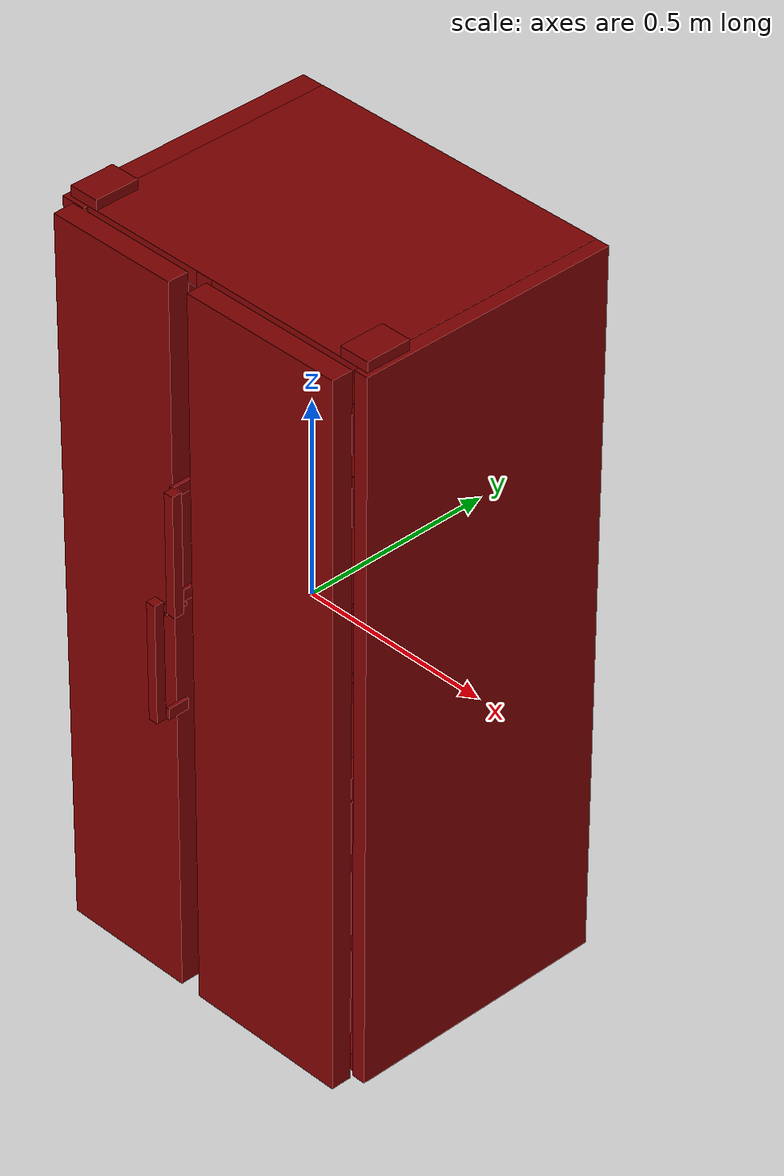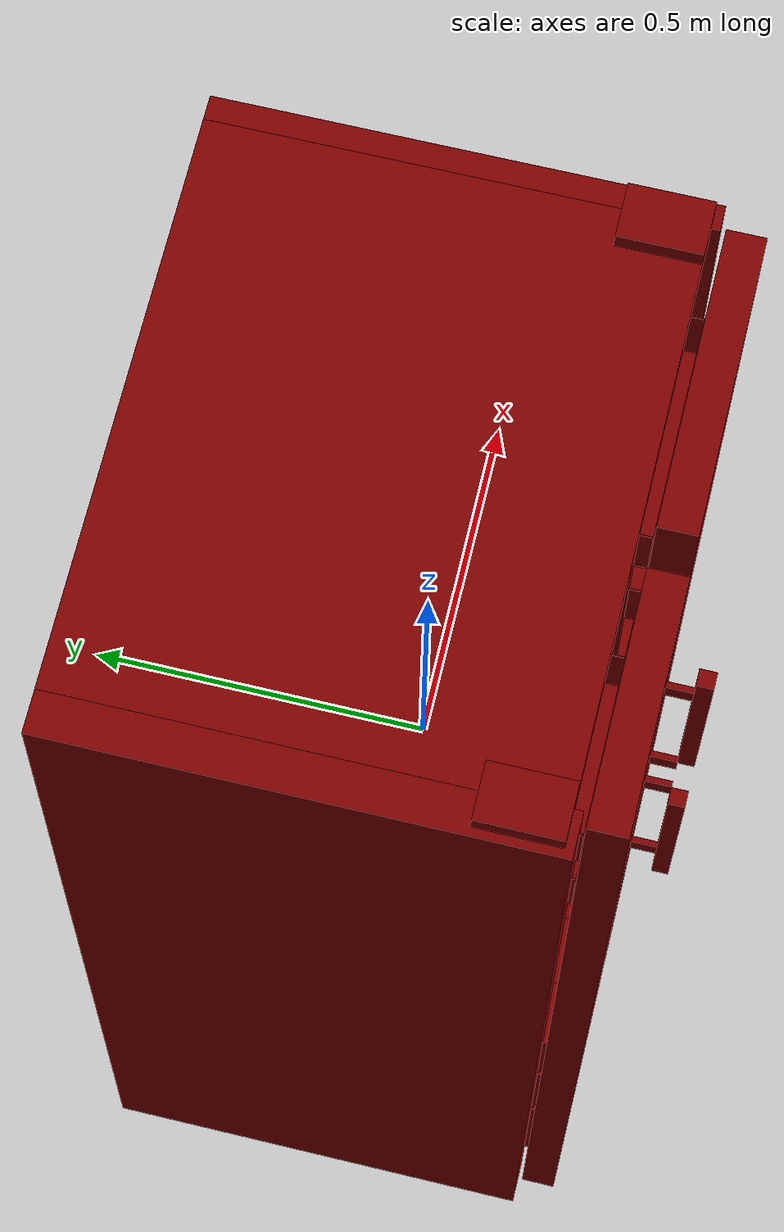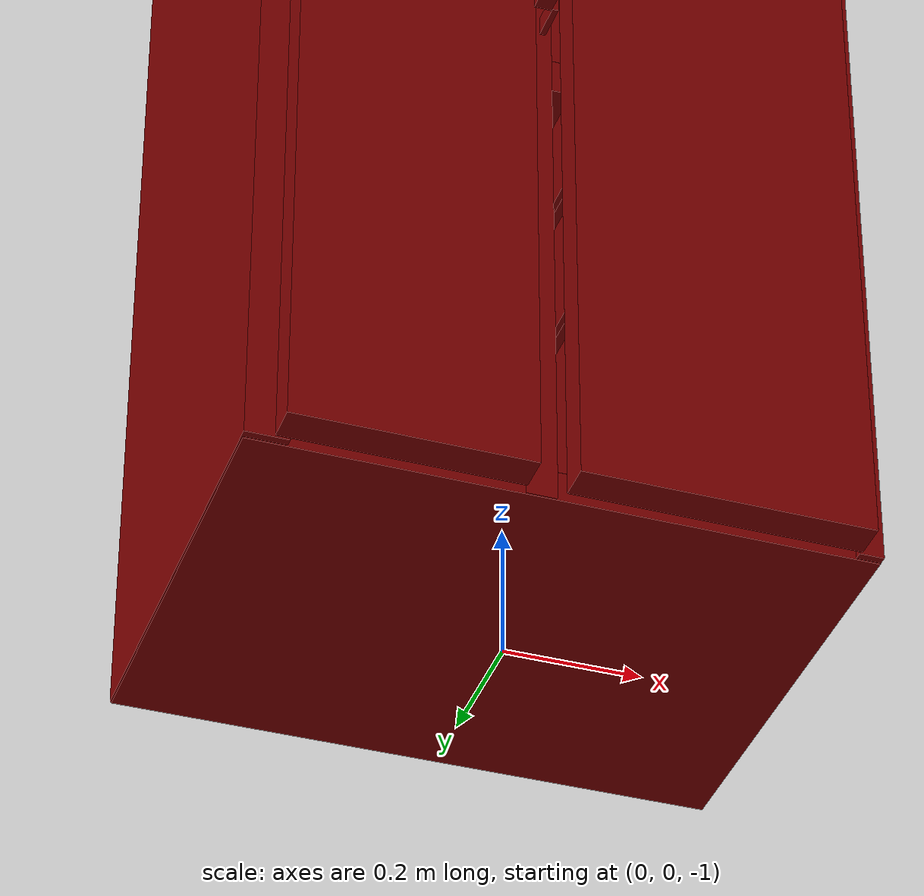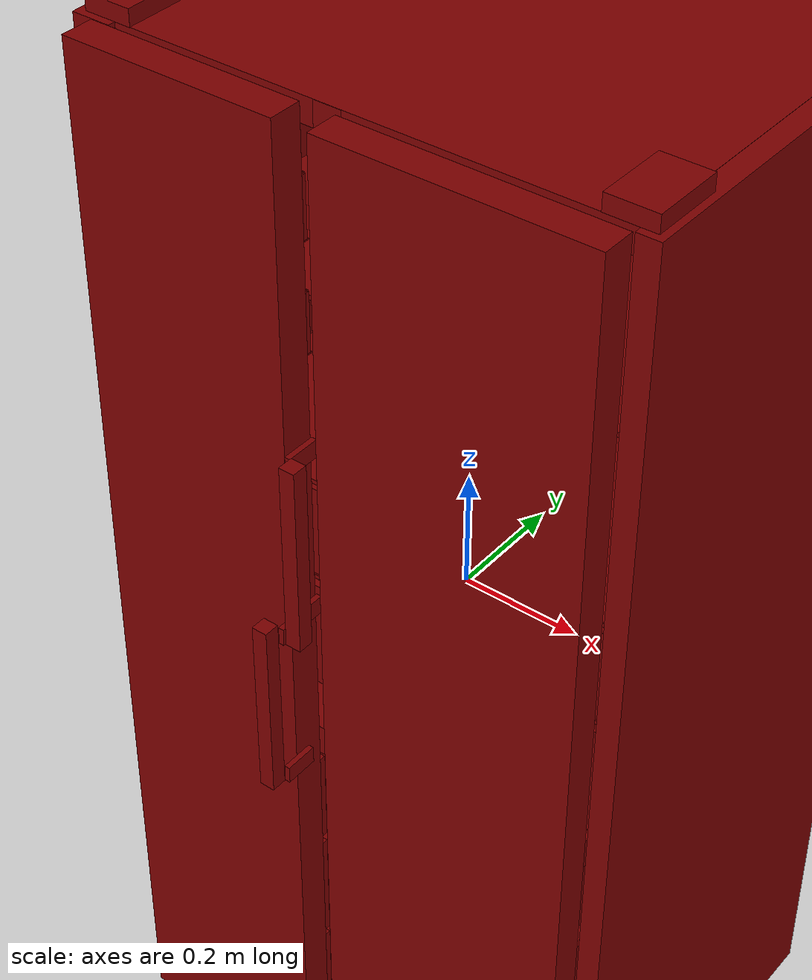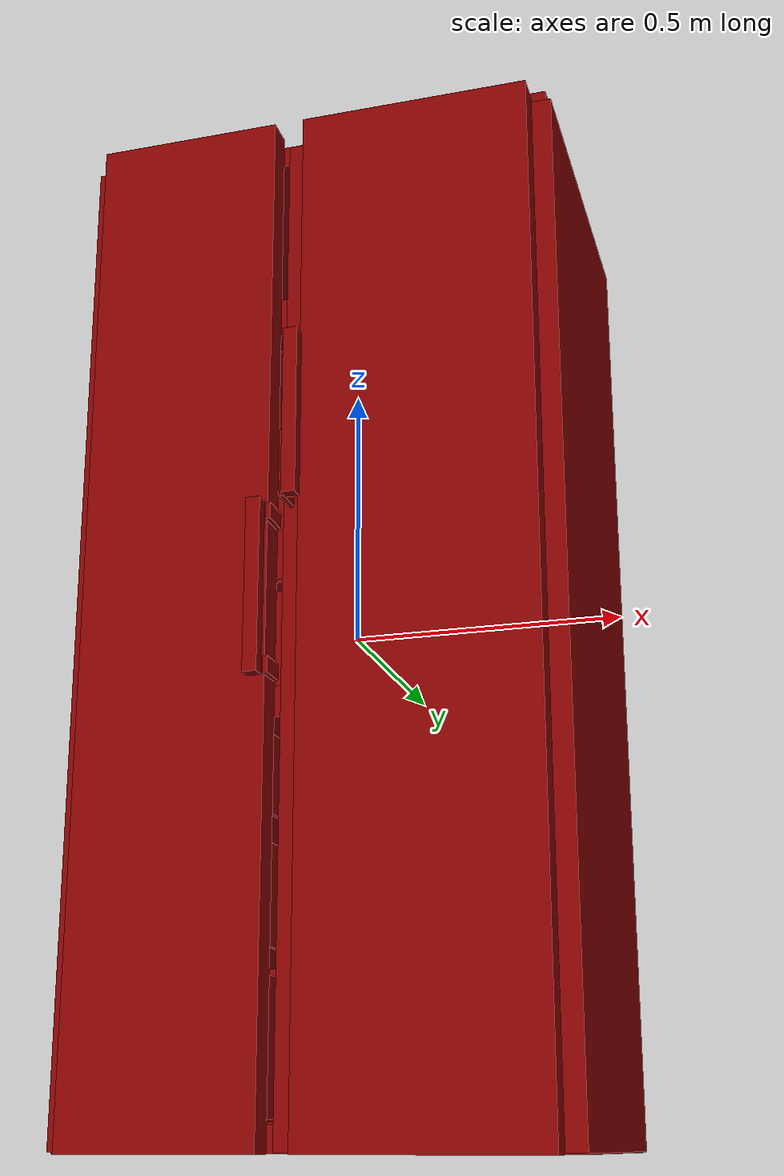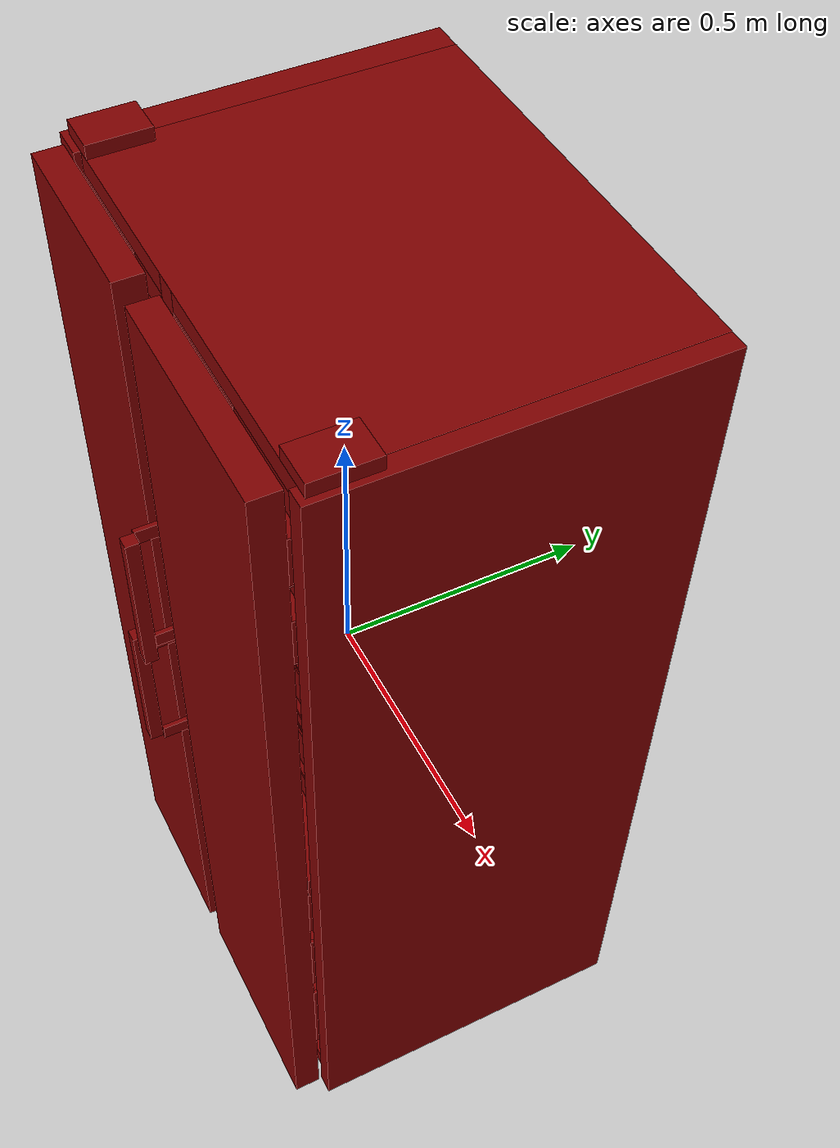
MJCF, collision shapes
<?xml version='1.0' encoding='UTF-8'?>
<mujoco model="model">
  <option timestep="0.002" gravity="0.0 0.0 -9.81"/>
  <compiler angle="radian"/>
  <asset>
    <mesh file="visuals/freezer_door.obj" name="freezer_door_vis"/>
    <mesh file="visuals/freezer_drawer0.obj" name="freezer_drawer0_vis"/>
    <mesh file="visuals/freezer_drawer1.obj" name="freezer_drawer1_vis"/>
    <mesh file="visuals/freezer_drawer2.obj" name="freezer_drawer2_vis"/>
    <mesh file="visuals/freezer_drawer3.obj" name="freezer_drawer3_vis"/>
    <mesh file="visuals/freezer_drawer4.obj" name="freezer_drawer4_vis"/>
    <mesh file="visuals/fridge_door.obj" name="fridge_door_vis"/>
    <mesh file="visuals/fridge_door_Clear.obj" name="fridge_door_Clear_vis"/>
    <mesh file="visuals/fridge_drawer0.obj" name="fridge_drawer0_vis"/>
    <mesh file="visuals/fridge_drawer1.obj" name="fridge_drawer1_vis"/>
    <mesh file="visuals/fridge_drawer2.obj" name="fridge_drawer2_vis"/>
    <mesh file="visuals/fridge_drawer3.obj" name="fridge_drawer3_vis"/>
    <mesh file="visuals/fridge_drawer4.obj" name="fridge_drawer4_vis"/>
    <mesh file="visuals/Body001.obj" name="Body001_vis"/>
    <mesh file="visuals/Body001_Clear.obj" name="Body001_Clear_vis"/>
    <texture file="visuals/T_BC001.png" name="Body001_material" type="2d"/>
    <material name="Body001_material" rgba="1 1 1 1.0" texture="Body001_material" shininess="0.2512328028678894" specular="2"/>
    <texture file="visuals/T_BC001.png" name="freezer_door_material" type="2d"/>
    <material name="freezer_door_material" rgba="1 1 1 1.0" texture="freezer_door_material" shininess="0.2512328028678894" specular="2"/>
    <texture file="visuals/T_BC001.png" name="freezer_drawer0_material" type="2d"/>
    <material name="freezer_drawer0_material" rgba="1 1 1 1.0" texture="freezer_drawer0_material" shininess="0.2512328028678894" specular="0.3103448502657381"/>
    <texture file="visuals/T_BC001.png" name="freezer_drawer1_material" type="2d"/>
    <material name="freezer_drawer1_material" rgba="1 1 1 1.0" texture="freezer_drawer1_material" shininess="0.2512328028678894" specular="0.3103448502657381"/>
    <texture file="visuals/T_BC001.png" name="freezer_drawer2_material" type="2d"/>
    <material name="freezer_drawer2_material" rgba="1 1 1 1.0" texture="freezer_drawer2_material" shininess="0.2512328028678894" specular="0.3103448502657381"/>
    <texture file="visuals/T_BC001.png" name="freezer_drawer3_material" type="2d"/>
    <material name="freezer_drawer3_material" rgba="1 1 1 1.0" texture="freezer_drawer3_material" shininess="0.2512328028678894" specular="0.3103448502657381"/>
    <texture file="visuals/T_BC001.png" name="freezer_drawer4_material" type="2d"/>
    <material name="freezer_drawer4_material" rgba="1 1 1 1.0" texture="freezer_drawer4_material" shininess="0.2512328028678894" specular="0.3103448502657381"/>
    <texture file="visuals/T_BC001.png" name="fridge_door_material" type="2d"/>
    <material name="fridge_door_material" rgba="1 1 1 1.0" texture="fridge_door_material" shininess="0.2512328028678894" specular="2"/>
    <texture file="visuals/T_BC001.png" name="fridge_door_Clear_material" type="2d"/>
    <material name="fridge_door_Clear_material" rgba="1 1 1 0.307692289352417" texture="fridge_door_Clear_material" shininess="0.2512328028678894" specular="0.3"/>
    <texture file="visuals/T_BC001.png" name="fridge_drawer0_material" type="2d"/>
    <material name="fridge_drawer0_material" rgba="1 1 1 1.0" texture="fridge_drawer0_material" shininess="0.2512328028678894" specular="0.3103448502657381"/>
    <texture file="visuals/T_BC001.png" name="fridge_drawer1_material" type="2d"/>
    <material name="fridge_drawer1_material" rgba="1 1 1 1.0" texture="fridge_drawer1_material" shininess="0.2512328028678894" specular="0.3103448502657381"/>
    <texture file="visuals/T_BC001.png" name="fridge_drawer2_material" type="2d"/>
    <material name="fridge_drawer2_material" rgba="1 1 1 1.0" texture="fridge_drawer2_material" shininess="0.2512328028678894" specular="0.3103448502657381"/>
    <texture file="visuals/T_BC001.png" name="fridge_drawer3_material" type="2d"/>
    <material name="fridge_drawer3_material" rgba="1 1 1 0.307692289352417" texture="fridge_drawer3_material" shininess="0.2512328028678894" specular="0.3103448502657381"/>
    <texture file="visuals/T_BC001.png" name="fridge_drawer4_material" type="2d"/>
    <material name="fridge_drawer4_material" rgba="1 1 1 0.307692289352417" texture="fridge_drawer4_material" shininess="0.2512328028678894" specular="0.3103448502657381"/>
    <texture file="visuals/T_BC001.png" name="Body001_Clear_material" type="2d"/>
    <material name="Body001_Clear_material" rgba="1 1 1 0.307692289352417" texture="Body001_Clear_material" shininess="0.2512328028678894" specular="0.3103448502657381"/>
  </asset>
  <default>
    <default class="visual">
      <geom conaffinity="0" contype="0" group="1" type="mesh"/>
    </default>
    <default class="collision">
      <geom group="0" rgba="0.5 0 0 0.5"/>
    </default>
    <default class="spawn">
      <geom group="0" rgba="1 1 1 0.5" contype="0" conaffinity="0"/>
      <site group="0" rgba="1 1 1 0.5"/>
    </default>
    <default class="region">
      <geom group="1" conaffinity="0" contype="0" rgba="0 1 0 0"/>
    </default>
  </default>
  <worldbody>
    <body>
      <body name="object">
        <geom mesh="Body001_vis" type="mesh" solimp="0.998 0.998 0.001" solref="0.001 1" friction="0.95 0.3 0.1" class="visual" material="Body001_material"/>
        <geom class="collision" type="box" pos="-0.2191927284002304 0.010217373259365559 0.5617574453353882" size="0.1556900590658188 0.20182056725025177 0.0037484492640942335" quat="1.0 0.0 0.0 0.0"/>
        <geom class="collision" type="box" pos="0.18059471249580383 0.010217373259365559 0.5624393224716187" size="0.18992839753627777 0.2018209546804428 0.0037484553176909685" quat="1.0 0.0 0.0 0.0"/>
        <geom class="collision" type="box" pos="-0.2191927284002304 0.010217373259365559 0.24459096789360046" size="0.15569062530994415 0.2018217146396637 0.003748467192053795" quat="1.0 0.0 0.0 0.0"/>
        <geom class="collision" type="box" pos="0.18059471249580383 0.010217373259365559 0.24527278542518616" size="0.1899295449256897 0.20182208716869354 0.003748473012819886" quat="1.0 0.0 0.0 0.0"/>
        <geom class="collision" type="box" pos="-0.2191927284002304 0.010217373259365559 0.06405968219041824" size="0.1556910127401352 0.20182247459888458 0.003748479066416621" quat="1.0 0.0 0.0 0.0"/>
        <geom class="collision" type="box" pos="0.18059471249580383 0.010217373259365559 0.06474149972200394" size="0.18993030488491058 0.20182284712791443 0.0037484848871827126" quat="1.0 0.0 0.0 0.0"/>
        <geom class="collision" type="box" pos="-0.41790592670440674 0.06337001919746399 -0.005060311406850815" size="0.031578924506902695 0.33859574794769287 0.9221314787864685" quat="1.0 0.0 0.0 0.0"/>
        <geom class="collision" type="box" pos="0.431427538394928 0.06337001919746399 -0.005060311406850815" size="0.018075084313750267 0.33859628438949585 0.9221325516700745" quat="1.0 0.0 0.0 0.0"/>
        <geom class="collision" type="box" pos="-0.03617604076862335 0.06932438910007477 -0.005060311406850815" size="0.022395625710487366 0.33264604210853577 0.9221408367156982" quat="1.0 0.0 0.0 0.0"/>
        <geom class="collision" type="box" pos="-0.0018581436015665531 0.06932438910007477 -0.1829259693622589" size="0.37307634949684143 0.33264291286468506 0.027705665677785873" quat="1.0 0.0 0.0 0.0"/>
        <geom class="collision" type="box" pos="0.01171052735298872 0.06932438910007477 0.897463321685791" size="0.40257006883621216 0.33264341950416565 0.020109234377741814" quat="1.0 0.0 0.0 0.0"/>
        <geom class="collision" type="box" pos="0.01312475185841322 0.31269246339797974 -0.005961664021015167" size="0.40551963448524475 0.08925551176071167 0.9226935505867004" quat="1.0 0.0 0.0 0.0"/>
        <geom class="collision" type="box" pos="0.0007350275991484523 0.06932441890239716 -0.9064415693283081" size="0.4479449689388275 0.33264443278312683 0.02277178317308426" quat="1.0 0.0 0.0 0.0"/>
        <geom class="collision" type="box" pos="-0.39877980947494507 -0.2059071958065033 0.9301031827926636" size="0.03880282863974571 0.05741431564092636 0.013140163384377956" quat="1.0 0.0 0.0 0.0"/>
        <geom class="collision" type="box" pos="0.3993501663208008 -0.2059071958065033 0.9301031827926636" size="0.038802895694971085 0.057414378970861435 0.013140179216861725" quat="1.0 0.0 0.0 0.0"/>
        <body name="freezer_door">
          <joint axis="0.0 0.0 -1.0" pos="-0.41782206296920776 -0.3080289363861084 -0.03210470825433731" limited="true" name="freezer_door_joint" range="0.0 1.5707963267948966" type="hinge" damping="1" frictionloss="1" armature=".01" stiffness="0.05"/>
          <geom mesh="freezer_door_vis" type="mesh" solimp="0.998 0.998 0.001" solref="0.001 1" friction="0.95 0.3 0.1" class="visual" material="freezer_door_material"/>
          <geom class="collision" type="box" pos="-0.24363894760608673 -0.27963539958000183 0.7153990268707275" size="0.12302876263856888 0.0009392445208504796 0.049916304647922516" quat="1.0 0.0 0.0 0.0"/>
          <geom class="collision" type="box" pos="-0.36429333686828613 -0.2427847981452942 0.71550452709198" size="0.0009392534266225994 0.03547966107726097 0.04981076717376709" quat="1.0 0.0 0.0 0.0"/>
          <geom class="collision" type="box" pos="-0.24434687197208405 -0.2059074193239212 0.71550452709198" size="0.11887757480144501 0.0009392508072778583 0.04981076717376709" quat="1.0 0.0 0.0 0.0"/>
          <geom class="collision" type="box" pos="-0.12249672412872314 -0.2427847981452942 0.71550452709198" size="0.0009392534266225994 0.03547966107726097 0.04981076717376709" quat="1.0 0.0 0.0 0.0"/>
          <geom class="collision" type="box" pos="-0.24292141199111938 -0.2426450401544571 0.6662249565124512" size="0.12231118977069855 0.0376768633723259 0.0009392482461407781" quat="1.0 0.0 0.0 0.0"/>
          <geom class="collision" type="box" pos="-0.24363894760608673 -0.27963539958000183 0.5351688861846924" size="0.12302876263856888 0.0009392445208504796 0.049916304647922516" quat="1.0 0.0 0.0 0.0"/>
          <geom class="collision" type="box" pos="-0.36333930492401123 -0.2427847981452942 0.5352743864059448" size="0.0009392534266225994 0.03547966107726097 0.04981076717376709" quat="1.0 0.0 0.0 0.0"/>
          <geom class="collision" type="box" pos="-0.24434687197208405 -0.2059074193239212 0.5352743864059448" size="0.11887757480144501 0.0009392508072778583 0.04981076717376709" quat="1.0 0.0 0.0 0.0"/>
          <geom class="collision" type="box" pos="-0.12249672412872314 -0.2427847981452942 0.5352743864059448" size="0.0009392534266225994 0.03547966107726097 0.04981076717376709" quat="1.0 0.0 0.0 0.0"/>
          <geom class="collision" type="box" pos="-0.24292141199111938 -0.2426450401544571 0.48599478602409363" size="0.12231118977069855 0.0376768633723259 0.0009392482461407781" quat="1.0 0.0 0.0 0.0"/>
          <geom class="collision" type="box" pos="-0.23585760593414307 -0.30889829993247986 -0.004155382513999939" size="0.17306047677993774 0.02668202668428421 0.9254235625267029" quat="1.0 0.0 0.0 0.0" name="freezer_door_main"/>
          <geom class="collision" type="box" pos="-0.0661163181066513 -0.3872798681259155 -0.010976136662065983" size="0.012665143236517906 0.012665143236517906 0.1547602117061615" quat="1.0 0.0 0.0 0.0" name="freezer_door_handle_main"/>
          <geom class="collision" type="box" pos="-0.047427255660295486 -0.3475547432899475 0.12634950876235962" size="0.004406571388244629 0.027533311396837234 0.014519368298351765" quat="1.0 0.0 0.0 0.0" name="freezer_door_handle_1"/>
          <geom class="collision" type="box" pos="-0.047427255660295486 -0.3475547432899475 -0.1482355147600174" size="0.004406571388244629 0.027533311396837234 0.014519368298351765" quat="1.0 0.0 0.0 0.0" name="freezer_door_handle_2"/>
        </body>
        <body name="freezer_drawer0">
          <geom class="region" name="reg_freezer_drawer0" type="box" pos="-0.21510645374655724 -0.08969205617904663 -0.756875216960907" size="0.12948565354943276 0.16410197114944458 0.10469020700454712"/>
          <joint axis="0.0 -1.0 0.0" pos="-0.21463386714458466 -0.09317250549793243 -0.755940854549408" limited="true" name="freezer_drawer0_joint" range="0.0 0.3" type="slide" damping="1" frictionloss="1" armature=".01" stiffness="0.05"/>
          <geom mesh="freezer_drawer0_vis" type="mesh" solimp="0.998 0.998 0.001" solref="0.001 1" friction="0.95 0.3 0.1" class="visual" material="freezer_drawer0_material"/>
          <geom class="collision" type="box" pos="-0.2161329835653305 0.09207402169704437 -0.76121985912323" size="0.13995569944381714 0.002930230228230357 0.11425691097974777" quat="1.0 0.0 0.0 0.0"/>
          <geom class="collision" type="box" pos="-0.35560137033462524 -0.09073059260845184 -0.7612197399139404" size="0.0032004944514483213 0.17880018055438995 0.11425664275884628" quat="1.0 0.0 0.0 0.0"/>
          <geom class="collision" type="box" pos="-0.07550551742315292 -0.09073059260845184 -0.7612197399139404" size="0.003200484672561288 0.17879992723464966 0.11425638198852539" quat="1.0 0.0 0.0 0.0"/>
          <geom class="collision" type="box" pos="-0.21436797082424164 -0.09018582850694656 -0.8722476959228516" size="0.13995490968227386 0.17934447526931763 0.0032002616208046675" quat="1.0 0.0 0.0 0.0"/>
          <geom class="collision" type="box" pos="-0.1191008985042572 -0.27172622084617615 -0.7538173198699951" size="0.04738727584481239 0.010428176261484623 0.12842223048210144" quat="1.0 0.0 0.0 0.0"/>
          <geom class="collision" type="box" pos="-0.21803468465805054 -0.27172622084617615 -0.6825311183929443" size="0.05154647305607796 0.010428176261484623 0.057136084884405136" quat="1.0 0.0 0.0 0.0"/>
          <geom class="collision" type="box" pos="-0.21803468465805054 -0.27172622084617615 -0.8352788686752319" size="0.05154647305607796 0.010428176261484623 0.04674777016043663" quat="1.0 0.0 0.0 0.0"/>
          <geom class="collision" type="box" pos="-0.31681889295578003 -0.27172622084617615 -0.7538173198699951" size="0.04723773151636124 0.010428176261484623 0.12842223048210144" quat="1.0 0.0 0.0 0.0"/>
          <geom class="collision" type="box" pos="-0.21803466975688934 -0.27158689498901367 -0.761932373046875" size="0.05154647305607796 0.00229278695769608 0.023585116490721703" quat="0.9871617555618286 -0.15972357988357544 0.0 0.0"/>
          <geom class="collision" type="box" pos="-0.21803466975688934 -0.2637040615081787 -0.7632468938827515" size="0.05154647305607796 0.00229278695769608 0.023585110902786255" quat="1.0 0.0 0.0 0.0"/>
        </body>
        <body name="freezer_drawer1">
          <geom class="region" name="reg_freezer_drawer1" type="box" pos="-0.21566808596253395 -0.08969205617904663 -0.5092398226261139" size="0.12892402133345604 0.16410197114944458 0.07717315649986267"/>
          <joint axis="0.0 -1.0 0.0" pos="-0.2168489545583725 -0.09317241609096527 -0.5081155300140381" limited="true" name="freezer_drawer1_joint" range="0.0 0.3" type="slide" damping="1" frictionloss="1" armature=".01" stiffness="0.05"/>
          <geom mesh="freezer_drawer1_vis" type="mesh" solimp="0.998 0.998 0.001" solref="0.001 1" friction="0.95 0.3 0.1" class="visual" material="freezer_drawer1_material"/>
          <geom class="collision" type="box" pos="-0.2161329835653305 0.09207402169704437 -0.5133911371231079" size="0.13995830714702606 0.002930271439254284 0.08683168888092041" quat="1.0 0.0 0.0 0.0"/>
          <geom class="collision" type="box" pos="-0.35487091541290283 -0.09073059260845184 -0.5133911371231079" size="0.003931030631065369 0.17880281805992126 0.08683156222105026" quat="1.0 0.0 0.0 0.0"/>
          <geom class="collision" type="box" pos="-0.07550551742315292 -0.09073059260845184 -0.5133911371231079" size="0.003200565930455923 0.17880256474018097 0.08683142811059952" quat="1.0 0.0 0.0 0.0"/>
          <geom class="collision" type="box" pos="-0.21436797082424164 -0.09018582105636597 -0.597000241279602" size="0.1399575024843216 0.17934711277484894 0.003200301667675376" quat="1.0 0.0 0.0 0.0"/>
          <geom class="collision" type="box" pos="-0.21803466975688934 -0.27158689498901367 -0.5157673358917236" size="0.05154647305607796 0.00229278695769608 0.023585118353366852" quat="0.9871617555618286 -0.15972357988357544 0.0 0.0"/>
          <geom class="collision" type="box" pos="-0.31681889295578003 -0.27172622084617615 -0.5084799528121948" size="0.04723773151636124 0.010428176261484623 0.10329610109329224" quat="1.0 0.0 0.0 0.0"/>
          <geom class="collision" type="box" pos="-0.21803468465805054 -0.27172622084617615 -0.5770264863967896" size="0.05154647305607796 0.010428176261484623 0.03453674539923668" quat="1.0 0.0 0.0 0.0"/>
          <geom class="collision" type="box" pos="-0.21803468465805054 -0.27172622084617615 -0.44940483570098877" size="0.05154647305607796 0.010428176261484623 0.04422098398208618" quat="1.0 0.0 0.0 0.0"/>
          <geom class="collision" type="box" pos="-0.1191008985042572 -0.27172622084617615 -0.5084799528121948" size="0.04738727584481239 0.010428176261484623 0.10329610109329224" quat="1.0 0.0 0.0 0.0"/>
          <geom class="collision" type="box" pos="-0.21803466975688934 -0.263041615486145 -0.5170818567276001" size="0.05154647305607796 0.00229278695769608 0.023585114628076553" quat="1.0 0.0 0.0 0.0"/>
        </body>
        <body name="freezer_drawer2">
          <geom class="region" name="reg_freezer_drawer2" type="box" pos="-0.21553296223282814 -0.08969207108020782 -0.3038061335682869" size="0.12905914506316185 0.16410198605060577 0.0590873116850853"/>
          <joint axis="0.0 -1.0 0.0" pos="-0.2168489545583725 -0.09317243099212646 -0.302822083234787" limited="true" name="freezer_drawer2_joint" range="0.0 0.3" type="slide" damping="1" frictionloss="1" armature=".01" stiffness="0.05"/>
          <geom mesh="freezer_drawer2_vis" type="mesh" solimp="0.998 0.998 0.001" solref="0.001 1" friction="0.95 0.3 0.1" class="visual" material="freezer_drawer2_material"/>
          <geom class="collision" type="box" pos="-0.2161329835653305 0.09207402169704437 -0.30812978744506836" size="0.1399608999490738 0.002930312417447567 0.06911139190196991" quat="1.0 0.0 0.0 0.0"/>
          <geom class="collision" type="box" pos="-0.35487091541290283 -0.09073059260845184 -0.30812978744506836" size="0.0039311121217906475 0.17880545556545258 0.06911125034093857" quat="1.0 0.0 0.0 0.0"/>
          <geom class="collision" type="box" pos="-0.07550551742315292 -0.09073059260845184 -0.30812978744506836" size="0.003200647421181202 0.1788051873445511 0.06911111623048782" quat="1.0 0.0 0.0 0.0"/>
          <geom class="collision" type="box" pos="-0.21436797082424164 -0.09018582105636597 -0.37401723861694336" size="0.13996011018753052 0.17934973537921906 0.0032003428786993027" quat="1.0 0.0 0.0 0.0"/>
          <geom class="collision" type="box" pos="-0.1191008985042572 -0.27172622084617615 -0.3025060296058655" size="0.04738727584481239 0.010428176261484623 0.08557447046041489" quat="1.0 0.0 0.0 0.0"/>
          <geom class="collision" type="box" pos="-0.21803468465805054 -0.27172622084617615 -0.24343091249465942" size="0.05154647305607796 0.010428176261484623 0.02649935893714428" quat="1.0 0.0 0.0 0.0"/>
          <geom class="collision" type="box" pos="-0.21803468465805054 -0.27172622084617615 -0.3533308804035187" size="0.05154647305607796 0.010428176261484623 0.03453674539923668" quat="1.0 0.0 0.0 0.0"/>
          <geom class="collision" type="box" pos="-0.31681889295578003 -0.27172622084617615 -0.3025060296058655" size="0.04723773151636124 0.010428176261484623 0.08557447046041489" quat="1.0 0.0 0.0 0.0"/>
          <geom class="collision" type="box" pos="-0.21803466975688934 -0.27158689498901367 -0.29207172989845276" size="0.05154647305607796 0.00229278695769608 0.023585118353366852" quat="0.9871617555618286 -0.15972357988357544 0.0 0.0"/>
          <geom class="collision" type="box" pos="-0.21803466975688934 -0.2637682557106018 -0.2933862507343292" size="0.05154647305607796 0.00229278695769608 0.023585114628076553" quat="1.0 0.0 0.0 0.0"/>
        </body>
        <body name="freezer_drawer3">
          <geom class="region" name="reg_freezer_drawer3" type="box" pos="-0.2166927121579647 0.008516713976860046 -0.04799192026257515" size="0.12296460738778114 0.17011475360393524 0.08303832432627678"/>
          <joint axis="0.0 -1.0 0.0" pos="-0.21567994356155396 0.004537040367722511 -0.054262690246105194" limited="true" name="freezer_drawer3_joint" range="0.0 0.3" type="slide" damping="1" frictionloss="1" armature=".01" stiffness="0.05"/>
          <geom mesh="freezer_drawer3_vis" type="mesh" solimp="0.998 0.998 0.001" solref="0.001 1" friction="0.95 0.3 0.1" class="visual" material="freezer_drawer3_material"/>
          <geom class="collision" type="box" pos="-0.21862977743148804 -0.1799316257238388 -0.06786449253559113" size="0.045026764273643494 0.00229278695769608 0.023585118353366852" quat="0.9871617555618286 -0.15972357988357544 0.0 0.0"/>
          <geom class="collision" type="box" pos="-0.21862977743148804 -0.1802385151386261 -0.12235140800476074" size="0.045026764273643494 0.010428176261484623 0.03019585832953453" quat="1.0 0.0 0.0 0.0"/>
          <geom class="collision" type="box" pos="-0.21862977743148804 -0.1802385151386261 -0.0004300996661186218" size="0.045026764273643494 0.010428176261484623 0.044821977615356445" quat="1.0 0.0 0.0 0.0"/>
          <geom class="collision" type="box" pos="-0.12151338160037994 -0.1802385151386261 -0.05418413132429123" size="0.052089616656303406 0.010428176261484623 0.09857600182294846" quat="1.0 0.0 0.0 0.0"/>
          <geom class="collision" type="box" pos="-0.21724015474319458 0.005912944674491882 -0.14009559154510498" size="0.13513877987861633 0.18467281758785248 0.0032004036474972963" quat="1.0 0.0 0.0 0.0"/>
          <geom class="collision" type="box" pos="-0.08431266248226166 0.0059129465371370316 -0.051873356103897095" size="0.0032007682602852583 0.18467307090759277 0.09167297184467316" quat="1.0 0.0 0.0 0.0"/>
          <geom class="collision" type="box" pos="-0.3484846353530884 0.0059129465371370316 -0.051873356103897095" size="0.003200778504833579 0.18467332422733307 0.09167309105396271" quat="1.0 0.0 0.0 0.0"/>
          <geom class="collision" type="box" pos="-0.2172401249408722 0.1954663246870041 -0.051873356103897095" size="0.1351395696401596 0.003604248631745577 0.09167320281267166" quat="1.0 0.0 0.0 0.0"/>
          <geom class="collision" type="box" pos="-0.21862977743148804 -0.1714940369129181 -0.06857043504714966" size="0.045026764273643494 0.0017136718379333615 0.024223007261753082" quat="1.0 0.0 0.0 0.0"/>
          <geom class="collision" type="box" pos="-0.31317341327667236 -0.1802385151386261 -0.05418413132429123" size="0.049516864120960236 0.010428176261484623 0.09857600182294846" quat="1.0 0.0 0.0 0.0"/>
        </body>
        <body name="freezer_drawer4">
          <geom class="region" name="reg_freezer_drawer4" type="box" pos="-0.214550893753767 0.008516713976860046 0.15281056612730026" size="0.12510642579197884 0.17011475360393524 0.06054491347074509"/>
          <joint axis="0.0 -1.0 0.0" pos="-0.21343432366847992 0.0036053620278835297 0.14956721663475037" limited="true" name="freezer_drawer4_joint" range="0.0 0.3" type="slide" damping="1" frictionloss="1" armature=".01" stiffness="0.05"/>
          <geom mesh="freezer_drawer4_vis" type="mesh" solimp="0.998 0.998 0.001" solref="0.001 1" friction="0.95 0.3 0.1" class="visual" material="freezer_drawer4_material"/>
          <geom class="collision" type="box" pos="-0.2183666080236435 -0.1799316257238388 0.12373460829257965" size="0.045026764273643494 0.00229278695769608 0.023585118353366852" quat="0.9871617555618286 -0.15972357988357544 0.0 0.0"/>
          <geom class="collision" type="box" pos="-0.2183666080236435 -0.1802385151386261 0.08487486094236374" size="0.045026764273643494 0.010428176261484623 0.014568688347935677" quat="1.0 0.0 0.0 0.0"/>
          <geom class="collision" type="box" pos="-0.2183666080236435 -0.1802385151386261 0.18805870413780212" size="0.045026764273643494 0.010428176261484623 0.041711680591106415" quat="1.0 0.0 0.0 0.0"/>
          <geom class="collision" type="box" pos="-0.11928136646747589 -0.1802385151386261 0.14993184804916382" size="0.05405845493078232 0.010428176261484623 0.07983853667974472" quat="1.0 0.0 0.0 0.0"/>
          <geom class="collision" type="box" pos="-0.21480366587638855 0.005912944674491882 0.0827578455209732" size="0.13690315186977386 0.18467281758785248 0.0032004036474972963" quat="1.0 0.0 0.0 0.0"/>
          <geom class="collision" type="box" pos="-0.08011180907487869 0.0059129465371370316 0.1488819420337677" size="0.0032007682602852583 0.18467307090759277 0.06957482546567917" quat="1.0 0.0 0.0 0.0"/>
          <geom class="collision" type="box" pos="-0.3481396436691284 0.0059129465371370316 0.1488819420337677" size="0.003527888795360923 0.18467332422733307 0.06957494467496872" quat="1.0 0.0 0.0 0.0"/>
          <geom class="collision" type="box" pos="-0.21480363607406616 0.19415202736854553 0.1488819420337677" size="0.13690392673015594 0.0035708039067685604 0.06957505643367767" quat="1.0 0.0 0.0 0.0"/>
          <geom class="collision" type="box" pos="-0.2183666080236435 -0.17163115739822388 0.12302866578102112" size="0.045026764273643494 0.0017136718379333615 0.024223007261753082" quat="1.0 0.0 0.0 0.0"/>
          <geom class="collision" type="box" pos="-0.31270575523376465 -0.1802385151386261 0.14993184804916382" size="0.04931237921118736 0.010428176261484623 0.07983853667974472" quat="1.0 0.0 0.0 0.0"/>
        </body>
        <body name="fridge_door">
          <joint axis="0.0 0.0 1.0" pos="0.41769593954086304 -0.30885615944862366 -0.03210461139678955" limited="true" name="fridge_door_joint" range="0.0 1.5707963267948966" type="hinge" damping="1" frictionloss="1" armature=".01" stiffness="0.05"/>
          <geom mesh="fridge_door_vis" type="mesh" solimp="0.998 0.998 0.001" solref="0.001 1" friction="0.95 0.3 0.1" class="visual" material="fridge_door_material"/>
          <geom class="collision" type="box" pos="0.20517344772815704 -0.27963539958000183 0.7153990268707275" size="0.16147293150424957 0.0009392445208504796 0.049916304647922516" quat="1.0 0.0 0.0 0.0"/>
          <geom class="collision" type="box" pos="0.04607490450143814 -0.2427847981452942 0.71550452709198" size="0.0009392523788847029 0.03547966107726097 0.04981076717376709" quat="1.0 0.0 0.0 0.0"/>
          <geom class="collision" type="box" pos="0.20446553826332092 -0.2059074193239212 0.71550452709198" size="0.1573217511177063 0.0009392508072778583 0.04981076717376709" quat="1.0 0.0 0.0 0.0"/>
          <geom class="collision" type="box" pos="0.3647598624229431 -0.2427847981452942 0.71550452709198" size="0.0009392534266225994 0.03547966107726097 0.04981076717376709" quat="1.0 0.0 0.0 0.0"/>
          <geom class="collision" type="box" pos="0.20589104294776917 -0.2426450401544571 0.6662249565124512" size="0.16075536608695984 0.0376768633723259 0.0009392482461407781" quat="1.0 0.0 0.0 0.0"/>
          <geom class="collision" type="box" pos="0.20517344772815704 -0.27963539958000183 0.5354951620101929" size="0.16147293150424957 0.0009392445208504796 0.049916304647922516" quat="1.0 0.0 0.0 0.0"/>
          <geom class="collision" type="box" pos="0.04607490450143814 -0.2427847981452942 0.5356006622314453" size="0.0009392523788847029 0.03547966107726097 0.04981076717376709" quat="1.0 0.0 0.0 0.0"/>
          <geom class="collision" type="box" pos="0.20446553826332092 -0.2059074193239212 0.5356006622314453" size="0.1573217511177063 0.0009392508072778583 0.04981076717376709" quat="1.0 0.0 0.0 0.0"/>
          <geom class="collision" type="box" pos="0.3647598624229431 -0.2427847981452942 0.5356006622314453" size="0.0009392534266225994 0.03547966107726097 0.04981076717376709" quat="1.0 0.0 0.0 0.0"/>
          <geom class="collision" type="box" pos="0.20589104294776917 -0.2426450401544571 0.4863210618495941" size="0.16075536608695984 0.0376768633723259 0.0009392482461407781" quat="1.0 0.0 0.0 0.0"/>
          <geom class="collision" type="box" pos="0.20360951125621796 -0.30889829993247986 -0.004155382513999939" size="0.21106405556201935 0.02668202668428421 0.9254235625267029" quat="1.0 0.0 0.0 0.0" name="fridge_door_main"/>
          <geom class="collision" type="box" pos="-0.0038608761969953775 -0.3872798681259155 0.3018189072608948" size="0.012665143236517906 0.012665143236517906 0.1547602117061615" quat="1.0 0.0 0.0 0.0" name="fridge_door_handle_main"/>
          <geom class="collision" type="box" pos="-0.02287730574607849 -0.3475547432899475 0.4391445517539978" size="0.004406571388244629 0.027533311396837234 0.014519368298351765" quat="1.0 0.0 0.0 0.0" name="fridge_door_handle_2"/>
          <geom class="collision" type="box" pos="-0.02287730574607849 -0.3475547432899475 0.1645595282316208" size="0.004406571388244629 0.027533311396837234 0.014519368298351765" quat="1.0 0.0 0.0 0.0" name="fridge_door_handle_1"/>
          <body name="fridge_door_Clear">
            <geom mesh="fridge_door_Clear_vis" type="mesh" solimp="0.998 0.998 0.001" solref="0.001 1" friction="0.95 0.3 0.1" class="visual" material="fridge_door_Clear_material"/>
            <geom class="collision" type="box" pos="0.20517344772815704 -0.27963539958000183 0.7153990268707275" size="0.16147293150424957 0.0009392445208504796 0.049916304647922516" quat="1.0 0.0 0.0 0.0"/>
            <geom class="collision" type="box" pos="0.04607490450143814 -0.2427847981452942 0.71550452709198" size="0.0009392523788847029 0.03547966107726097 0.04981076717376709" quat="1.0 0.0 0.0 0.0"/>
            <geom class="collision" type="box" pos="0.20446553826332092 -0.2059074193239212 0.71550452709198" size="0.1573217511177063 0.0009392508072778583 0.04981076717376709" quat="1.0 0.0 0.0 0.0"/>
            <geom class="collision" type="box" pos="0.3647598624229431 -0.2427847981452942 0.71550452709198" size="0.0009392534266225994 0.03547966107726097 0.04981076717376709" quat="1.0 0.0 0.0 0.0"/>
            <geom class="collision" type="box" pos="0.20589104294776917 -0.2426450401544571 0.6662249565124512" size="0.16075536608695984 0.0376768633723259 0.0009392482461407781" quat="1.0 0.0 0.0 0.0"/>
            <geom class="collision" type="box" pos="0.20517344772815704 -0.27963539958000183 0.5354951620101929" size="0.16147293150424957 0.0009392445208504796 0.049916304647922516" quat="1.0 0.0 0.0 0.0"/>
            <geom class="collision" type="box" pos="0.04607490450143814 -0.2427847981452942 0.5356006622314453" size="0.0009392523788847029 0.03547966107726097 0.04981076717376709" quat="1.0 0.0 0.0 0.0"/>
            <geom class="collision" type="box" pos="0.20446553826332092 -0.2059074193239212 0.5356006622314453" size="0.1573217511177063 0.0009392508072778583 0.04981076717376709" quat="1.0 0.0 0.0 0.0"/>
            <geom class="collision" type="box" pos="0.3647598624229431 -0.2427847981452942 0.5356006622314453" size="0.0009392534266225994 0.03547966107726097 0.04981076717376709" quat="1.0 0.0 0.0 0.0"/>
            <geom class="collision" type="box" pos="0.20589104294776917 -0.2426450401544571 0.4863210618495941" size="0.16075536608695984 0.0376768633723259 0.0009392482461407781" quat="1.0 0.0 0.0 0.0"/>
          </body>
        </body>
        <body name="fridge_drawer0">
          <geom class="region" name="reg_fridge_drawer0" type="box" pos="0.18122865073382854 -0.08969205617904663 -0.7567433714866638" size="0.1608836649209261 0.16410197114944458 0.1046490797996521"/>
          <joint axis="0.0 -1.0 0.0" pos="0.1793026626110077 -0.09317250549793243 -0.755940854549408" limited="true" name="fridge_drawer0_joint" range="0.0 0.3" type="slide" damping="1" frictionloss="1" armature=".01" stiffness="0.05"/>
          <geom mesh="fridge_drawer0_vis" type="mesh" solimp="0.998 0.998 0.001" solref="0.001 1" friction="0.95 0.3 0.1" class="visual" material="fridge_drawer0_material"/>
          <geom class="collision" type="box" pos="0.18290644884109497 0.09175843745470047 -0.7607442140579224" size="0.172058567404747 0.0029302106704562902 0.11407706886529922" quat="1.0 0.0 0.0 0.0"/>
          <geom class="collision" type="box" pos="0.00811284501105547 -0.09091895818710327 -0.7607442140579224" size="0.00408815685659647 0.17846068739891052 0.11407680809497833" quat="1.0 0.0 0.0 0.0"/>
          <geom class="collision" type="box" pos="0.3519182801246643 -0.09091895818710327 -0.7607442140579224" size="0.0032004425302147865 0.17846043407917023 0.11407653987407684" quat="1.0 0.0 0.0 0.0"/>
          <geom class="collision" type="box" pos="0.17947018146514893 -0.09091897308826447 -0.8713669776916504" size="0.17205776274204254 0.17846018075942993 0.003200241131708026" quat="1.0 0.0 0.0 0.0"/>
          <geom class="collision" type="box" pos="0.1846810132265091 -0.27158689498901367 -0.761932373046875" size="0.05154647305607796 0.00229278695769608 0.023585116490721703" quat="0.9871617555618286 -0.15972357988357544 0.0 0.0"/>
          <geom class="collision" type="box" pos="0.06966304033994675 -0.27172622084617615 -0.7538173198699951" size="0.06347151100635529 0.010428176261484623 0.12842223048210144" quat="1.0 0.0 0.0 0.0"/>
          <geom class="collision" type="box" pos="0.1846810132265091 -0.27172622084617615 -0.8352788686752319" size="0.05154647305607796 0.010428176261484623 0.04674777016043663" quat="1.0 0.0 0.0 0.0"/>
          <geom class="collision" type="box" pos="0.1846810132265091 -0.27172622084617615 -0.6825311183929443" size="0.05154647305607796 0.010428176261484623 0.057136084884405136" quat="1.0 0.0 0.0 0.0"/>
          <geom class="collision" type="box" pos="0.29611027240753174 -0.27172622084617615 -0.7538173198699951" size="0.0598827563226223 0.010428176261484623 0.12842223048210144" quat="1.0 0.0 0.0 0.0"/>
          <geom class="collision" type="box" pos="0.1846810132265091 -0.2630889415740967 -0.7632468938827515" size="0.05154646933078766 0.00229278695769608 0.023585110902786255" quat="1.0 0.0 0.0 0.0"/>
        </body>
        <body name="fridge_drawer1">
          <geom class="region" name="reg_fridge_drawer1" type="box" pos="0.1805307948961854 -0.08973132818937302 -0.509058266878128" size="0.16073769780248404 0.1640626991391182 0.07708231902122498"/>
          <joint axis="0.0 -1.0 0.0" pos="0.17799954116344452 -0.09317241609096527 -0.5081155300140381" limited="true" name="fridge_drawer1_joint" range="0.0 0.3" type="slide" damping="1" frictionloss="1" armature=".01" stiffness="0.05"/>
          <geom mesh="fridge_drawer1_vis" type="mesh" solimp="0.998 0.998 0.001" solref="0.001 1" friction="0.95 0.3 0.1" class="visual" material="fridge_drawer1_material"/>
          <geom class="collision" type="box" pos="0.18290644884109497 0.09175843745470047 -0.5129154920578003" size="0.17206117510795593 0.002930251881480217 0.08665250986814499" quat="1.0 0.0 0.0 0.0"/>
          <geom class="collision" type="box" pos="0.00811284501105547 -0.09091895818710327 -0.5129154920578003" size="0.004088237881660461 0.17846332490444183 0.08665238320827484" quat="1.0 0.0 0.0 0.0"/>
          <geom class="collision" type="box" pos="0.3519182801246643 -0.09091895818710327 -0.5129154920578003" size="0.0032005237881094217 0.17846307158470154 0.0866522490978241" quat="1.0 0.0 0.0 0.0"/>
          <geom class="collision" type="box" pos="0.17947018146514893 -0.09091896563768387 -0.5961195230484009" size="0.17206035554409027 0.17846281826496124 0.0032002790831029415" quat="1.0 0.0 0.0 0.0"/>
          <geom class="collision" type="box" pos="0.29610902070999146 -0.27172622084617615 -0.5084799528121948" size="0.05925263091921806 0.010428176261484623 0.10329610109329224" quat="1.0 0.0 0.0 0.0"/>
          <geom class="collision" type="box" pos="0.18530990183353424 -0.27172622084617615 -0.44940483570098877" size="0.05154647305607796 0.010428176261484623 0.04422098398208618" quat="1.0 0.0 0.0 0.0"/>
          <geom class="collision" type="box" pos="0.18530990183353424 -0.27172622084617615 -0.5770264863967896" size="0.05154647305607796 0.010428176261484623 0.03453674539923668" quat="1.0 0.0 0.0 0.0"/>
          <geom class="collision" type="box" pos="0.06893588602542877 -0.27172622084617615 -0.5084799528121948" size="0.06482753902673721 0.010428176261484623 0.10329610109329224" quat="1.0 0.0 0.0 0.0"/>
          <geom class="collision" type="box" pos="0.18530990183353424 -0.27158689498901367 -0.5157673358917236" size="0.05154647305607796 0.00229278695769608 0.023585118353366852" quat="0.9871617555618286 -0.15972357988357544 0.0 0.0"/>
          <geom class="collision" type="box" pos="0.18530990183353424 -0.2633255124092102 -0.5170818567276001" size="0.05154646933078766 0.00229278695769608 0.023585114628076553" quat="1.0 0.0 0.0 0.0"/>
        </body>
        <body name="fridge_drawer2">
          <geom class="region" name="reg_fridge_drawer2" type="box" pos="0.18129062745720148 -0.08969205617904663 -0.3036208376288414" size="0.1614975452646613 0.16410197114944458 0.058992734014987946"/>
          <joint axis="0.0 -1.0 0.0" pos="0.17799954116344452 -0.09317243099212646 -0.302822083234787" limited="true" name="fridge_drawer2_joint" range="0.0 0.3" type="slide" damping="1" frictionloss="1" armature=".01" stiffness="0.05"/>
          <geom mesh="fridge_drawer2_vis" type="mesh" solimp="0.998 0.998 0.001" solref="0.001 1" friction="0.95 0.3 0.1" class="visual" material="fridge_drawer2_material"/>
          <geom class="collision" type="box" pos="0.18290644884109497 0.09175843745470047 -0.30765417218208313" size="0.17206378281116486 0.0029302928596735 0.0689321979880333" quat="1.0 0.0 0.0 0.0"/>
          <geom class="collision" type="box" pos="0.00811284501105547 -0.09091895818710327 -0.30765417218208313" size="0.00408831937238574 0.17846596240997314 0.06893207132816315" quat="1.0 0.0 0.0 0.0"/>
          <geom class="collision" type="box" pos="0.3519182801246643 -0.09091895818710327 -0.30765417218208313" size="0.0032006052788347006 0.17846569418907166 0.0689319372177124" quat="1.0 0.0 0.0 0.0"/>
          <geom class="collision" type="box" pos="0.17947018146514893 -0.09091896563768387 -0.3731365501880646" size="0.1720629632472992 0.17846545577049255 0.0032003202941268682" quat="1.0 0.0 0.0 0.0"/>
          <geom class="collision" type="box" pos="0.18461860716342926 -0.27158689498901367 -0.29207172989845276" size="0.05154647305607796 0.00229278695769608 0.023585118353366852" quat="0.9871617555618286 -0.15972357988357544 0.0 0.0"/>
          <geom class="collision" type="box" pos="0.06826656311750412 -0.27172622084617615 -0.3025060296058655" size="0.06480558961629868 0.010428176261484623 0.08557447046041489" quat="1.0 0.0 0.0 0.0"/>
          <geom class="collision" type="box" pos="0.18461860716342926 -0.27172622084617615 -0.3533308804035187" size="0.05154647305607796 0.010428176261484623 0.03453674539923668" quat="1.0 0.0 0.0 0.0"/>
          <geom class="collision" type="box" pos="0.18461860716342926 -0.27172622084617615 -0.24343091249465942" size="0.05154647305607796 0.010428176261484623 0.02649935893714428" quat="1.0 0.0 0.0 0.0"/>
          <geom class="collision" type="box" pos="0.2959778904914856 -0.27172622084617615 -0.3025060296058655" size="0.0598127506673336 0.010428176261484623 0.08557447046041489" quat="1.0 0.0 0.0 0.0"/>
          <geom class="collision" type="box" pos="0.18461860716342926 -0.2631601393222809 -0.2933862507343292" size="0.05154646933078766 0.00229278695769608 0.023585114628076553" quat="1.0 0.0 0.0 0.0"/>
        </body>
        <body name="fridge_drawer3">
          <geom class="region" name="reg_fridge_drawer3" type="box" pos="0.18463693372905254 0.008516713976860046 -0.047785434871912" size="0.15726408345997334 0.17011475360393524 0.08283183893561363"/>
          <joint axis="0.0 -1.0 0.0" pos="0.18280352652072906 0.0045370422303676605 -0.054262690246105194" limited="true" name="fridge_drawer3_joint" range="0.0 0.3" type="slide" damping="1" frictionloss="1" armature=".01" stiffness="0.05"/>
          <geom mesh="fridge_drawer3_vis" type="mesh" solimp="0.998 0.998 0.001" solref="0.001 1" friction="0.95 0.3 0.1" class="visual" material="fridge_drawer3_material"/>
          <geom class="collision" type="box" pos="0.18717963993549347 -0.1713446080684662 -0.06857043504714966" size="0.045026764273643494 0.0017136718379333615 0.024223007261753082" quat="1.0 0.0 0.0 0.0"/>
          <geom class="collision" type="box" pos="0.1827128827571869 0.19547906517982483 -0.051873356103897095" size="0.16904522478580475 0.003984722308814526 0.09167320281267166" quat="1.0 0.0 0.0 0.0"/>
          <geom class="collision" type="box" pos="0.017102748155593872 0.0059129465371370316 -0.051873356103897095" size="0.003200778504833579 0.18467332422733307 0.09167309105396271" quat="1.0 0.0 0.0 0.0"/>
          <geom class="collision" type="box" pos="0.3517923355102539 0.0059129465371370316 -0.051873356103897095" size="0.003200766397640109 0.18467307090759277 0.09167297184467316" quat="1.0 0.0 0.0 0.0"/>
          <geom class="collision" type="box" pos="0.1827128529548645 0.005912944674491882 -0.14009559154510498" size="0.16904443502426147 0.18467281758785248 0.0032004036474972963" quat="1.0 0.0 0.0 0.0"/>
          <geom class="collision" type="box" pos="0.2983206510543823 -0.1802385151386261 -0.05397346615791321" size="0.06611424684524536 0.010428176261484623 0.09878667443990707" quat="1.0 0.0 0.0 0.0"/>
          <geom class="collision" type="box" pos="0.18717963993549347 -0.1802385151386261 -0.00021943822503089905" size="0.045026764273643494 0.010428176261484623 0.04503264278173447" quat="1.0 0.0 0.0 0.0"/>
          <geom class="collision" type="box" pos="0.18717963993549347 -0.1802385151386261 -0.12235140800476074" size="0.045026764273643494 0.010428176261484623 0.03019585832953453" quat="1.0 0.0 0.0 0.0"/>
          <geom class="collision" type="box" pos="0.07275498658418655 -0.1802385151386261 -0.05397346615791321" size="0.06939790397882462 0.010428176261484623 0.09878667443990707" quat="1.0 0.0 0.0 0.0"/>
          <geom class="collision" type="box" pos="0.18717963993549347 -0.1799316257238388 -0.06786449253559113" size="0.045026764273643494 0.00229278695769608 0.023585118353366852" quat="0.9871617555618286 -0.15972357988357544 0.0 0.0"/>
        </body>
        <body name="fridge_drawer4">
          <geom class="region" name="reg_fridge_drawer4" type="box" pos="0.1824548188596964 0.008516713976860046 0.15279847756028175" size="0.15981932340562344 0.17011475360393524 0.06064772030711174"/>
          <joint axis="0.0 -1.0 0.0" pos="0.18039406836032867 0.0036053545773029327 0.14956721663475037" limited="true" name="fridge_drawer4_joint" range="0.0 0.3" type="slide" damping="1" frictionloss="1" armature=".01" stiffness="0.05"/>
          <geom mesh="fridge_drawer4_vis" type="mesh" solimp="0.998 0.998 0.001" solref="0.001 1" friction="0.95 0.3 0.1" class="visual" material="fridge_drawer4_material"/>
          <geom class="collision" type="box" pos="0.07167880982160568 -0.1802385151386261 0.14993184804916382" size="0.07326391339302063 0.010428176261484623 0.07983853667974472" quat="1.0 0.0 0.0 0.0"/>
          <geom class="collision" type="box" pos="0.18124745786190033 0.19479244947433472 0.1488819420337677" size="0.17252199351787567 0.002930374350398779 0.06957505643367767" quat="1.0 0.0 0.0 0.0"/>
          <geom class="collision" type="box" pos="0.012620510533452034 0.0059129465371370316 0.1488819420337677" size="0.0032007775735110044 0.18467332422733307 0.06957494467496872" quat="1.0 0.0 0.0 0.0"/>
          <geom class="collision" type="box" pos="0.3515573740005493 0.0059129465371370316 0.1488819420337677" size="0.003200770355761051 0.18467307090759277 0.06957482546567917" quat="1.0 0.0 0.0 0.0"/>
          <geom class="collision" type="box" pos="0.18124744296073914 0.005912944674491882 0.0827578455209732" size="0.1725212037563324 0.18467281758785248 0.0032004036474972963" quat="1.0 0.0 0.0 0.0"/>
          <geom class="collision" type="box" pos="0.3002545237541199 -0.1802385151386261 0.14993184804916382" size="0.06525822728872299 0.010428176261484623 0.07983853667974472" quat="1.0 0.0 0.0 0.0"/>
          <geom class="collision" type="box" pos="0.1899694800376892 -0.1802385151386261 0.18805870413780212" size="0.045026764273643494 0.010428176261484623 0.041711680591106415" quat="1.0 0.0 0.0 0.0"/>
          <geom class="collision" type="box" pos="0.1899694800376892 -0.1802385151386261 0.08487486094236374" size="0.045026764273643494 0.010428176261484623 0.014568688347935677" quat="1.0 0.0 0.0 0.0"/>
          <geom class="collision" type="box" pos="0.1899694800376892 -0.1799316257238388 0.12373460829257965" size="0.045026764273643494 0.00229278695769608 0.023585118353366852" quat="0.9871617555618286 -0.15972357988357544 0.0 0.0"/>
          <geom class="collision" type="box" pos="0.1899694800376892 -0.1713446080684662 0.12302866578102112" size="0.045026764273643494 0.0017136718379333615 0.024223007261753082" quat="1.0 0.0 0.0 0.0"/>
        </body>
        <body name="Body001_Clear">
          <geom mesh="Body001_Clear_vis" type="mesh" solimp="0.998 0.998 0.001" solref="0.001 1" friction="0.95 0.3 0.1" class="visual" material="Body001_Clear_material"/>
          <geom class="collision" type="box" pos="-0.2191927284002304 0.010217373259365559 0.5617574453353882" size="0.1556900590658188 0.20182056725025177 0.0037484492640942335" quat="1.0 0.0 0.0 0.0"/>
          <geom class="collision" type="box" pos="0.18059471249580383 0.010217373259365559 0.5624393224716187" size="0.18992839753627777 0.2018209546804428 0.0037484553176909685" quat="1.0 0.0 0.0 0.0"/>
          <geom class="collision" type="box" pos="-0.2191927284002304 0.010217373259365559 0.24459096789360046" size="0.15569062530994415 0.2018217146396637 0.003748467192053795" quat="1.0 0.0 0.0 0.0"/>
          <geom class="collision" type="box" pos="0.18059471249580383 0.010217373259365559 0.24527278542518616" size="0.1899295449256897 0.20182208716869354 0.003748473012819886" quat="1.0 0.0 0.0 0.0"/>
          <geom class="collision" type="box" pos="-0.2191927284002304 0.010217373259365559 0.06405968219041824" size="0.1556910127401352 0.20182247459888458 0.003748479066416621" quat="1.0 0.0 0.0 0.0"/>
          <geom class="collision" type="box" pos="0.18059471249580383 0.010217373259365559 0.06474149972200394" size="0.18993030488491058 0.20182284712791443 0.0037484848871827126" quat="1.0 0.0 0.0 0.0"/>
        </body>
        <geom class="region" name="reg_fridge_shelf0" type="box" pos="0.17960207909345627 0.004786044359207153 0.4044310599565506" size="0.1786319220662117 0.17384542322158814 0.14792263305187225"/>
        <geom class="region" name="reg_fridge_shelf1" type="box" pos="0.17960207909345627 0.004786044359207153 0.7202320694923401" size="0.1786319220662117 0.17384542322158814 0.1485171446800232"/>
        <geom class="region" name="reg_freezer_shelf1" type="box" pos="-0.21726376935839653 0.004786044359207153 0.7201136350631714" size="0.14900678566098213 0.17384542322158814 0.1486355791091919"/>
        <geom class="region" name="reg_freezer_shelf0" type="box" pos="-0.21726376935839653 0.004786044359207153 0.404283732175827" size="0.14900678566098213 0.17384542322158814 0.14807139134407044"/>
        <geom class="region" name="reg_main" type="box" pos="0.0 0.03319500386714935 0.0" size="0.45099992847442627 0.3697754273414612 0.9446359405517578"/>
      </body>
    </body>
  </worldbody>
  <actuator>
    <motor name="freezer_door_joint_actuator" joint="freezer_door_joint" gear="50"/>
    <motor name="freezer_drawer0_joint_actuator" joint="freezer_drawer0_joint" gear="50"/>
    <motor name="freezer_drawer1_joint_actuator" joint="freezer_drawer1_joint" gear="50"/>
    <motor name="freezer_drawer2_joint_actuator" joint="freezer_drawer2_joint" gear="50"/>
    <motor name="freezer_drawer3_joint_actuator" joint="freezer_drawer3_joint" gear="50"/>
    <motor name="freezer_drawer4_joint_actuator" joint="freezer_drawer4_joint" gear="50"/>
    <motor name="fridge_door_joint_actuator" joint="fridge_door_joint" gear="50"/>
    <motor name="fridge_drawer0_joint_actuator" joint="fridge_drawer0_joint" gear="50"/>
    <motor name="fridge_drawer1_joint_actuator" joint="fridge_drawer1_joint" gear="50"/>
    <motor name="fridge_drawer2_joint_actuator" joint="fridge_drawer2_joint" gear="50"/>
    <motor name="fridge_drawer3_joint_actuator" joint="fridge_drawer3_joint" gear="50"/>
    <motor name="fridge_drawer4_joint_actuator" joint="fridge_drawer4_joint" gear="50"/>
  </actuator>
</mujoco>
